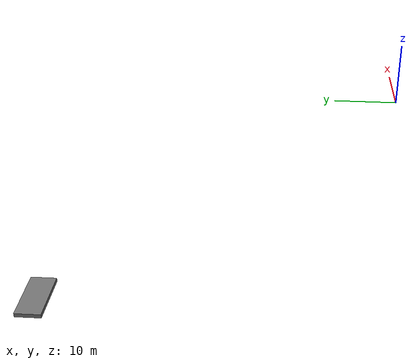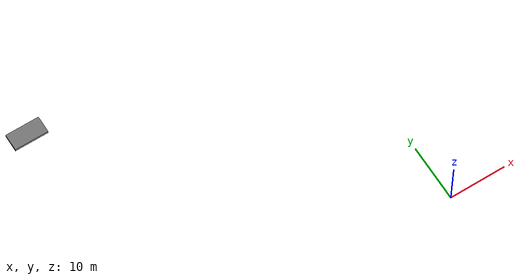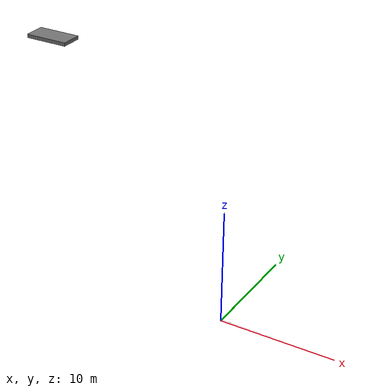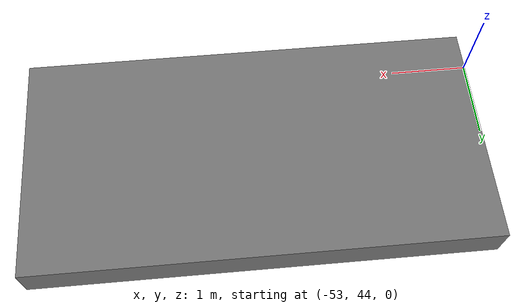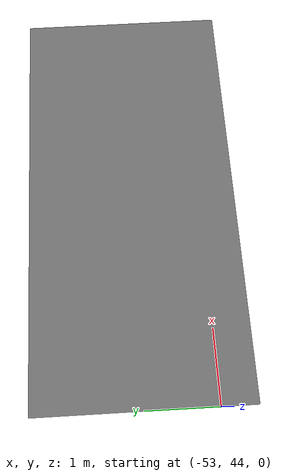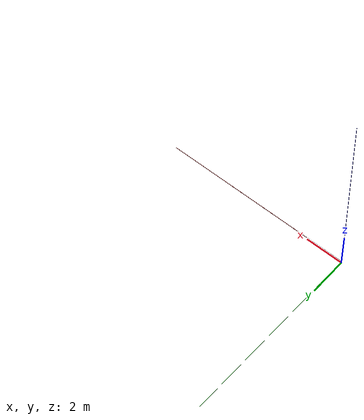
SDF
<sdf version="1.6">
 <world name="wamv_mpc">
  <plugin filename="gz-sim-physics-system" name="gz::sim::systems::Physics"/>
  <plugin filename="gz-sim-sensors-system" name="gz::sim::systems::Sensors">
   <render_engine>ogre2</render_engine>
   <background_color>0.8 0.8 0.8</background_color>
  </plugin>
  <plugin filename="gz-sim-scene-broadcaster-system" name="gz::sim::systems::SceneBroadcaster"/>
  <plugin filename="gz-sim-user-commands-system" name="gz::sim::systems::UserCommands"/>
  <plugin filename="gz-sim-imu-system" name="gz::sim::systems::Imu"/>
  <plugin filename="gz-sim-magnetometer-system" name="gz::sim::systems::Magnetometer"/>
  <plugin name="gz::sim::systems::Contact" filename="gz-sim-contact-system"/>
  <plugin name="gz::sim::systems::AirPressure" filename="gz-sim-air-pressure-system"/>
  <plugin name="gz::sim::systems::ApplyLinkWrench" filename="gz-sim-apply-link-wrench-system"/>
  <plugin name="gz::sim::systems::NavSat" filename="gz-sim-navsat-system"/>
  <magnetic_field>6e-06 2.3e-05 -4.2e-05</magnetic_field>
  <scene><ambient>1.0 1.0 1.0</ambient><background>0.8 0.8 0.8</background></scene>
  <light type="directional" name="sun">
   <pose>0 0 10 0 0 0</pose>
   <diffuse>0.8 0.8 0.8 1</diffuse>
   <specular>0.6 0.6 0.6 1</specular>
   <direction>-0.5 0.1 -0.9</direction>
  </light>
  <spherical_coordinates>
   <latitude_deg>51.525571</latitude_deg>
   <longitude_deg>-3.954478</longitude_deg>
   <elevation>0</elevation>
   <heading_deg>0</heading_deg>
   <surface_model>EARTH_WGS84</surface_model>
  </spherical_coordinates>
  <model name="axes">
   <static>1</static>
   <link name="link">
    <visual name="r">
     <cast_shadows>0</cast_shadows>
     <pose>5 0 0.1 0 0 0</pose>
     <geometry><box><size>10 0.01 0.01</size></box></geometry>
     <material>
      <ambient>1 0 0 1</ambient>
      <diffuse>1 0 0 1</diffuse>
      <emissive>1 0 0 1</emissive>
      <specular>0.5 0.5 0.5 1</specular>
     </material>
    </visual>
    <visual name="g">
     <cast_shadows>0</cast_shadows>
     <pose>0 5 0.1 0 0 0</pose>
     <geometry><box><size>0.01 10 0.01</size></box></geometry>
     <material>
      <ambient>0 1 0 1</ambient>
      <diffuse>0 1 0 1</diffuse>
      <emissive>0 1 0 1</emissive>
      <specular>0.5 0.5 0.5 1</specular>
     </material>
    </visual>
    <visual name="b">
     <cast_shadows>0</cast_shadows>
     <pose>0 0 5.1 0 0 0</pose>
     <geometry><box><size>0.01 0.01 10</size></box></geometry>
     <material>
      <ambient>0 0 1 1</ambient>
      <diffuse>0 0 1 1</diffuse>
      <emissive>0 0 1 1</emissive>
      <specular>0.5 0.5 0.5 1</specular>
     </material>
    </visual>
   </link>
  </model>
  <model name="static_platform">
   <static>true</static>
   <pose>-50 45 -0.2 0 0 0</pose>
   <link name="link">
    <collision name="collision"><geometry><box><size>10 10 0.5</size></box></geometry></collision>
    <visual name="visual">
     <geometry><box><size>6 3 0.5</size></box></geometry>
     <material><ambient>0.45 0.45 0.45 1</ambient><diffuse>0.45 0.45 0.45 1</diffuse></material>
    </visual>
   </link>
  </model>
 </world>
</sdf>
